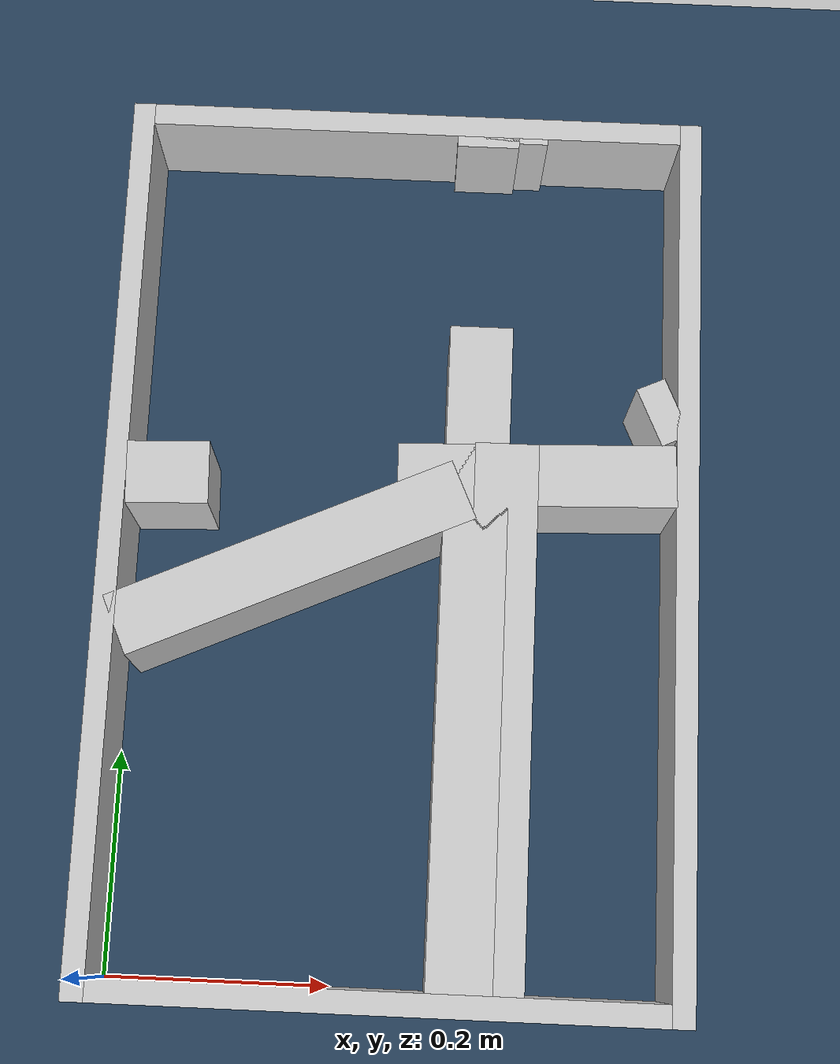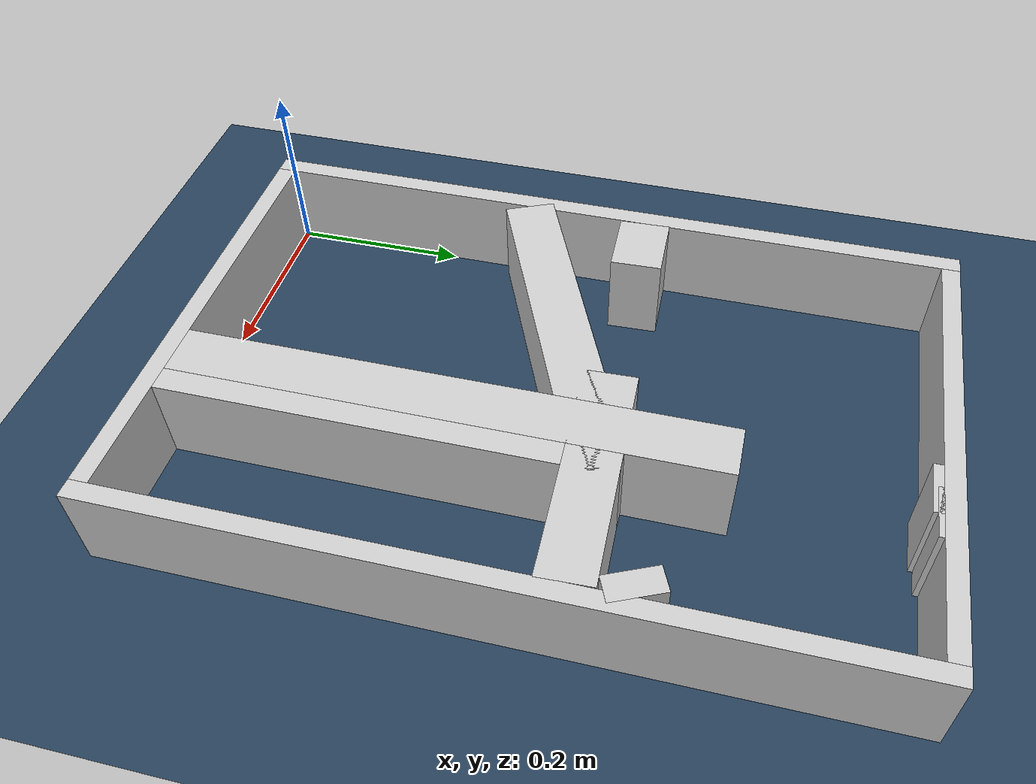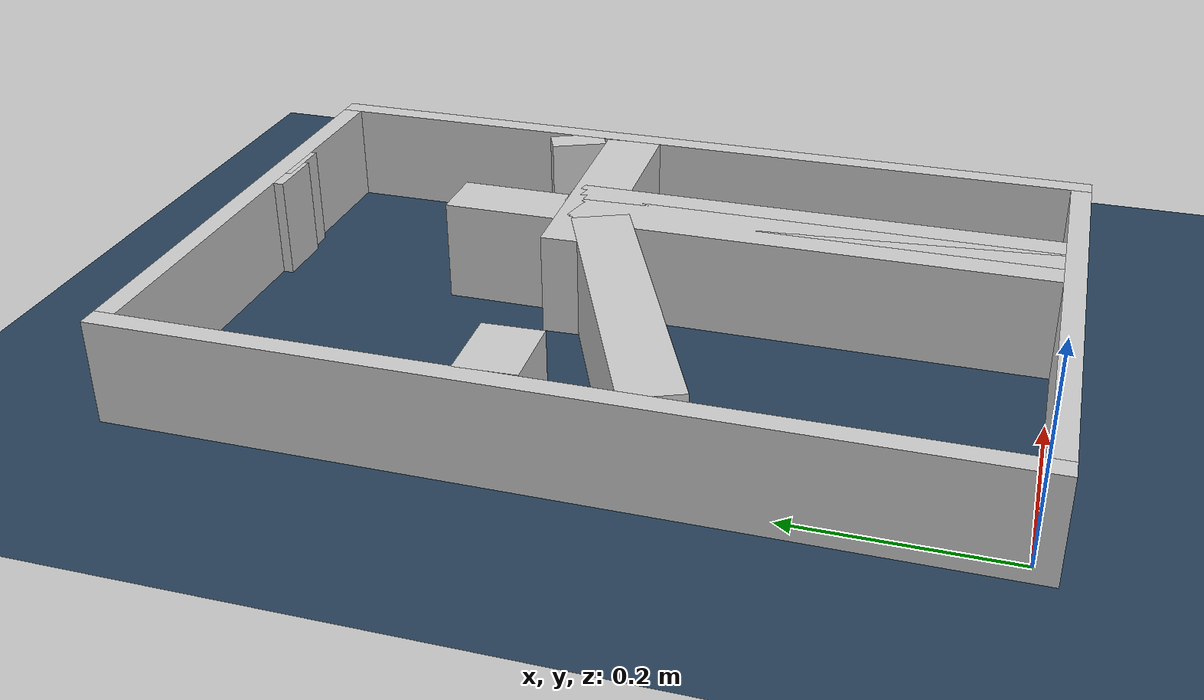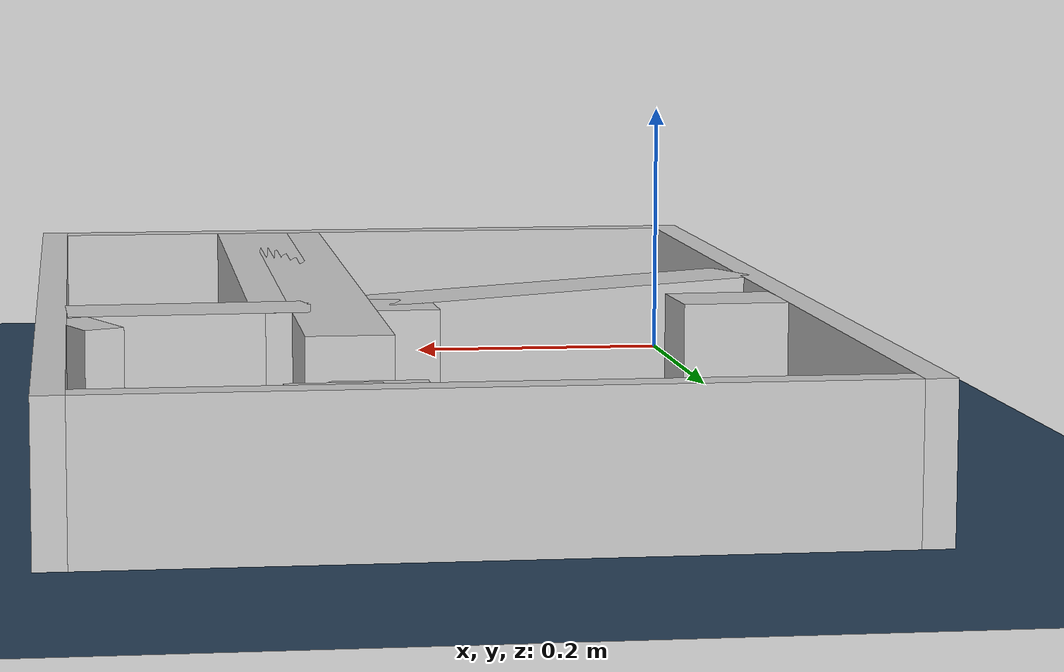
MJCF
<?xml version="1.0" ?>
<mujoco model="generated_real_template">
  <compiler angle="degree"/>
  <option timestep="0.002" integrator="implicitfast" iterations="100" cone="elliptic"/>
  <default>
    <geom density="1"/>
  </default>
  <asset>
    <texture builtin="gradient" height="3072" rgb1="0.3 0.5 0.7" rgb2="0 0 0" type="skybox" width="512"/>
    <texture builtin="checker" height="300" mark="edge" markrgb="0.8 0.8 0.8" name="groundplane" rgb1="0.2 0.3 0.4" rgb2="0.1 0.2 0.3" type="2d" width="300"/>
    <material name="groundplane" reflectance="0.2" texrepeat="5 5" texture="groundplane" texuniform="true"/>
  </asset>
  <worldbody>
    <light dir="0 0 -1" directional="true" pos="0 0 1.5"/>
    <geom name="floor" type="plane" condim="4" friction="0.5 0.005 0.001" material="groundplane" size="0 0 0.05"/>
    <body name="walls">
      <geom name="wall_boundary_left" type="box" condim="4" friction="1.0 0.005 0.0001" rgba="0.8 0.8 0.8 1" pos="-0.010000 0.387500 0.050000" euler="0 0 0.000000" size="0.010000 0.407500 0.050000"/>
      <geom name="wall_boundary_right" type="box" condim="4" friction="1.0 0.005 0.0001" rgba="0.8 0.8 0.8 1" pos="0.500000 0.387500 0.050000" euler="0 0 0.000000" size="0.010000 0.407500 0.050000"/>
      <geom name="wall_boundary_bottom" type="box" condim="4" friction="1.0 0.005 0.0001" rgba="0.8 0.8 0.8 1" pos="0.245000 -0.010000 0.050000" euler="0 0 0.000000" size="0.245000 0.010000 0.050000"/>
      <geom name="wall_boundary_top" type="box" condim="4" friction="1.0 0.005 0.0001" rgba="0.8 0.8 0.8 1" pos="0.245000 0.785000 0.050000" euler="0 0 0.000000" size="0.245000 0.010000 0.050000"/>
      <geom name="wall_inner_1_1" type="box" condim="4" friction="1.0 0.005 0.0001" rgba="0.8 0.8 0.8 1" pos="0.338630 0.239497 0.050000" euler="0 0 90.000000" size="0.239497 0.028500 0.050000"/>
      <geom name="wall_inner_1_2" type="box" condim="4" friction="1.0 0.005 0.0001" rgba="0.8 0.8 0.8 1" pos="0.338630 0.772222 0.050000" euler="0 0 90.000000" size="0.002778 0.028500 0.050000"/>
      <geom name="wall_inner_2_1" type="box" condim="4" friction="1.0 0.005 0.0001" rgba="0.8 0.8 0.8 1" pos="0.312094 0.293946 0.050000" euler="0 0 90.000000" size="0.293946 0.028500 0.050000"/>
      <geom name="wall_inner_2_2" type="box" condim="4" friction="1.0 0.005 0.0001" rgba="0.8 0.8 0.8 1" pos="0.312094 0.769895 0.050000" euler="0 0 90.000000" size="0.005105 0.028500 0.050000"/>
      <geom name="wall_inner_3_1" type="box" condim="4" friction="1.0 0.005 0.0001" rgba="0.8 0.8 0.8 1" pos="0.150676 0.367071 0.050000" euler="0 0 24.245581" size="0.165252 0.028500 0.050000"/>
      <geom name="wall_inner_3_2" type="box" condim="4" friction="1.0 0.005 0.0001" rgba="0.8 0.8 0.8 1" pos="0.477390 0.514215 0.050000" euler="0 0 24.245581" size="0.013830 0.028500 0.050000"/>
      <geom name="wall_inner_4_1" type="box" condim="4" friction="1.0 0.005 0.0001" rgba="0.8 0.8 0.8 1" pos="0.036905 0.439651 0.050000" euler="0 0 1.928853" size="0.036926 0.028500 0.050000"/>
      <geom name="wall_inner_4_2" type="box" condim="4" friction="1.0 0.005 0.0001" rgba="0.8 0.8 0.8 1" pos="0.365878 0.450730 0.050000" euler="0 0 1.928853" size="0.124193 0.028500 0.050000"/>
    </body>
  </worldbody>
</mujoco>
